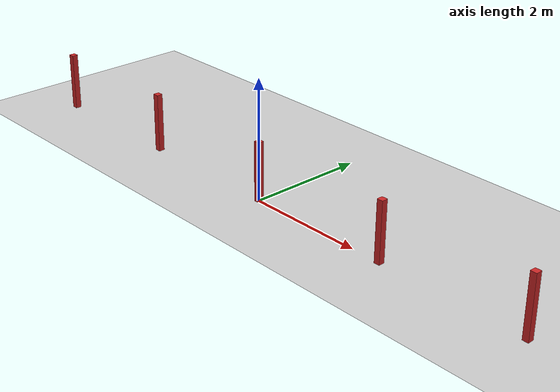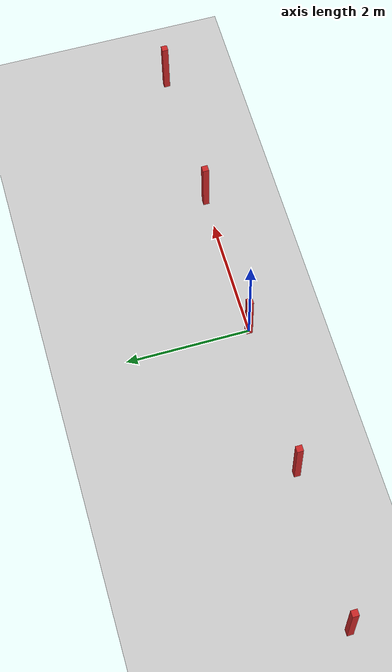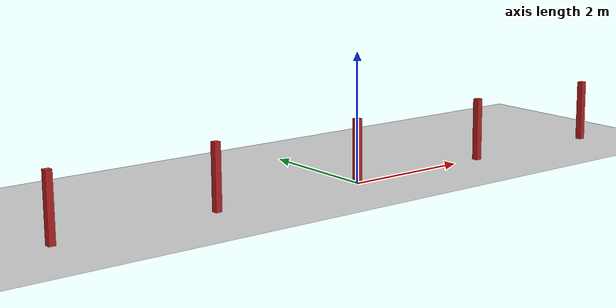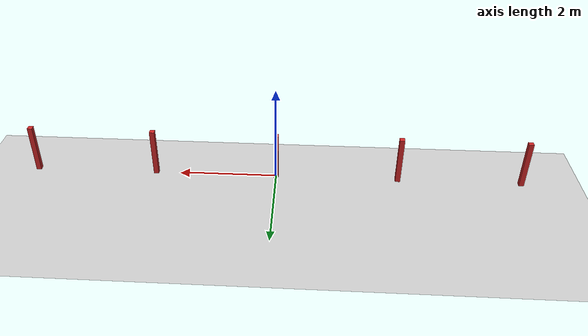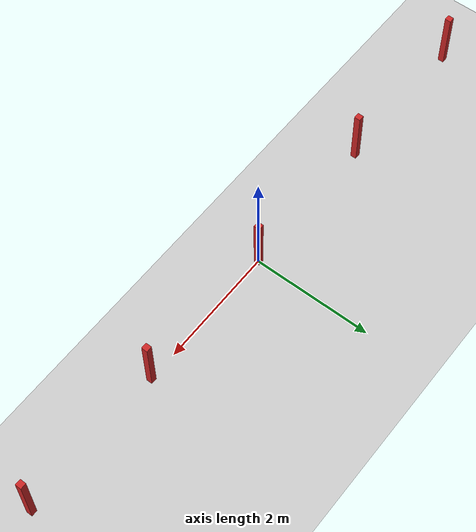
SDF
<sdf version="1.7">
 <world name="default">
  <light name="sun" type="directional">
   <pose>0 0 10 0 -0 0</pose>
   <diffuse>0.8 0.8 0.8 1</diffuse>
   <specular>0.2 0.2 0.2 1</specular>
   <attenuation>
    <range>1000</range>
    <constant>0.9</constant>
    <linear>0.01</linear>
    <quadratic>0.001</quadratic>
   </attenuation>
   <direction>-0.5 0.1 -0.9</direction>
   <spot><inner_angle>0</inner_angle><outer_angle>0</outer_angle><falloff>0</falloff></spot>
  </light>
  <model name="ground_plane">
   <static>1</static>
   <link name="link">
    <collision name="collision">
     <geometry><plane><normal>0 0 1</normal><size>100 100</size></plane></geometry>
     <surface>
      <contact><collide_bitmask>65535</collide_bitmask></contact>
      <friction><ode><mu>100</mu><mu2>50</mu2></ode></friction>
     </surface>
    </collision>
    <visual name="visual">
     <cast_shadows>0</cast_shadows>
     <geometry><plane><normal>0 0 1</normal><size>100 100</size></plane></geometry>
     <material>
      <script><uri>file://media/materials/scripts/gazebo.material</uri><name>Gazebo/Grey</name></script>
     </material>
    </visual>
   </link>
  </model>
  <gravity>0 0 -9.8</gravity>
  <magnetic_field>6e-06 2.3e-05 -4.2e-05</magnetic_field>
  <atmosphere type="adiabatic"/>
  <physics type="ode">
   <max_step_size>0.001</max_step_size>
   <real_time_factor>1</real_time_factor>
   <real_time_update_rate>1000</real_time_update_rate>
  </physics>
  <scene><ambient>0.4 0.4 0.4 1</ambient><background>0.7 0.7 0.7 1</background><shadows>1</shadows></scene>
  <spherical_coordinates>
   <surface_model>EARTH_WGS84</surface_model>
   <latitude_deg>0</latitude_deg>
   <longitude_deg>0</longitude_deg>
   <elevation>0</elevation>
   <heading_deg>0</heading_deg>
  </spherical_coordinates>
  <model name="balance1">
   <link name="balance">
    <inertial>
     <pose>0 0 0.5 0 -0 0</pose>
     <mass>100</mass>
     <inertia><ixx>8.4167</ixx><ixy>0</ixy><ixz>0</ixz><iyy>8.4167</iyy><iyz>0</iyz><izz>0.16667</izz></inertia>
    </inertial>
    <collision name="balance_collision">
     <pose>0 0 0.5 0 -0 0</pose>
     <geometry><box><size>0.1 0.1 1</size></box></geometry>
    </collision>
    <visual name="balance_visual">
     <pose>0 0 0.5 0 -0 0</pose>
     <geometry><box><size>0.1 0.1 1</size></box></geometry>
     <material>
      <script><name>Gazebo/Red</name><uri>file://media/materials/scripts/gazebo.material</uri></script>
     </material>
    </visual>
   </link>
   <pose>-5 0 0 0 -0 0</pose>
  </model>
  <model name="balance2">
   <link name="balance">
    <inertial>
     <pose>0 0 0.5 0 -0 0</pose>
     <mass>100</mass>
     <inertia><ixx>8.4167</ixx><ixy>0</ixy><ixz>0</ixz><iyy>8.4167</iyy><iyz>0</iyz><izz>0.16667</izz></inertia>
    </inertial>
    <collision name="balance_collision">
     <pose>0 0 0.5 0 -0 0</pose>
     <geometry><box><size>0.1 0.1 1</size></box></geometry>
    </collision>
    <visual name="balance_visual">
     <pose>0 0 0.5 0 -0 0</pose>
     <geometry><box><size>0.1 0.1 1</size></box></geometry>
     <material>
      <script><name>Gazebo/Red</name><uri>file://media/materials/scripts/gazebo.material</uri></script>
     </material>
    </visual>
   </link>
   <pose>-2.5 0 0 0 -0 0</pose>
  </model>
  <model name="balance3">
   <link name="balance">
    <inertial>
     <pose>0 0 0.5 0 -0 0</pose>
     <mass>100</mass>
     <inertia><ixx>8.4167</ixx><ixy>0</ixy><ixz>0</ixz><iyy>8.4167</iyy><iyz>0</iyz><izz>0.16667</izz></inertia>
    </inertial>
    <collision name="balance_collision">
     <pose>0 0 0.5 0 -0 0</pose>
     <geometry><box><size>0.1 0.1 1</size></box></geometry>
    </collision>
    <visual name="balance_visual">
     <pose>0 0 0.5 0 -0 0</pose>
     <geometry><box><size>0.1 0.1 1</size></box></geometry>
     <material>
      <script><name>Gazebo/Red</name><uri>file://media/materials/scripts/gazebo.material</uri></script>
     </material>
    </visual>
   </link>
  </model>
  <model name="balance4">
   <link name="balance">
    <inertial>
     <pose>0 0 0.5 0 -0 0</pose>
     <mass>100</mass>
     <inertia><ixx>8.4167</ixx><ixy>0</ixy><ixz>0</ixz><iyy>8.4167</iyy><iyz>0</iyz><izz>0.16667</izz></inertia>
    </inertial>
    <collision name="balance_collision">
     <pose>0 0 0.5 0 -0 0</pose>
     <geometry><box><size>0.1 0.1 1</size></box></geometry>
    </collision>
    <visual name="balance_visual">
     <pose>0 0 0.5 0 -0 0</pose>
     <geometry><box><size>0.1 0.1 1</size></box></geometry>
     <material>
      <script><name>Gazebo/Red</name><uri>file://media/materials/scripts/gazebo.material</uri></script>
     </material>
    </visual>
   </link>
   <pose>2.5 0 0 0 -0 0</pose>
  </model>
  <model name="balance5">
   <link name="balance">
    <inertial>
     <pose>0 0 0.5 0 -0 0</pose>
     <mass>100</mass>
     <inertia><ixx>8.4167</ixx><ixy>0</ixy><ixz>0</ixz><iyy>8.4167</iyy><iyz>0</iyz><izz>0.16667</izz></inertia>
    </inertial>
    <collision name="balance_collision">
     <pose>0 0 0.5 0 -0 0</pose>
     <geometry><box><size>0.1 0.1 1</size></box></geometry>
    </collision>
    <visual name="balance_visual">
     <pose>0 0 0.5 0 -0 0</pose>
     <geometry><box><size>0.1 0.1 1</size></box></geometry>
     <material>
      <script><name>Gazebo/Red</name><uri>file://media/materials/scripts/gazebo.material</uri></script>
     </material>
    </visual>
   </link>
   <pose>5 0 0 0 -0 0</pose>
  </model>
 </world>
</sdf>
